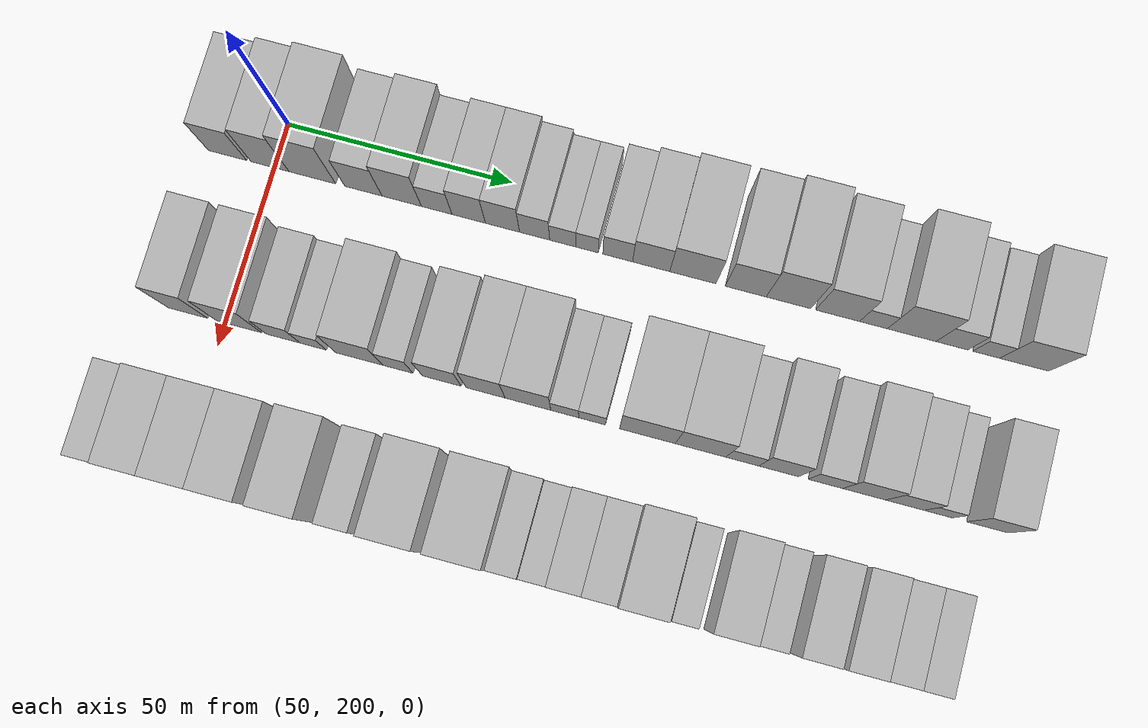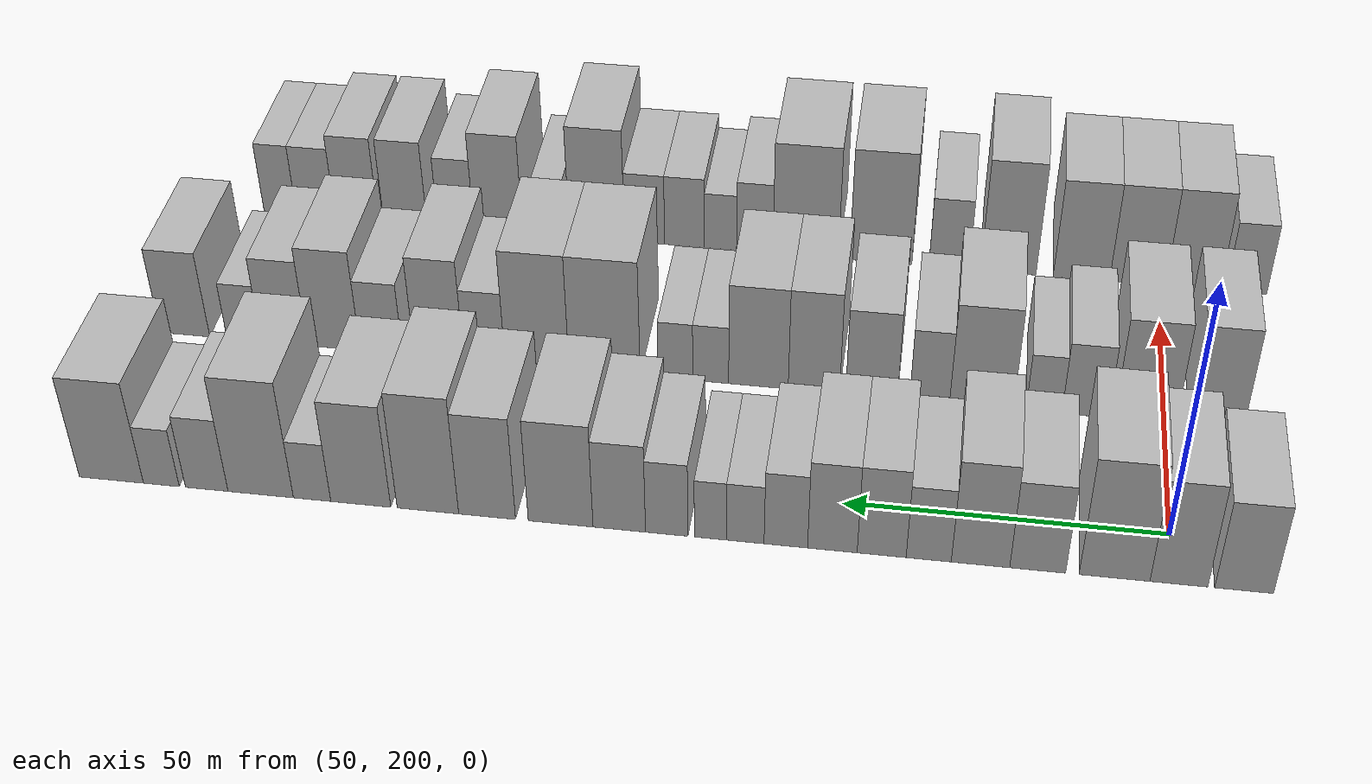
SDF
<sdf version="1.6">
 <world name="default">
  <model name="building_61">
   <static>1</static>
   <pose>50.0000 189.5062 0 0.000000 0.000000 0.000000</pose>
   <link name="link">
    <pose>0 0 9.00 0 0 0</pose>
    <collision name="collision"><geometry><box><size>20.0000 8.5826 18.0000</size></box></geometry></collision>
    <visual name="visual">
     <cast_shadows>0</cast_shadows>
     <geometry><box><size>20.0000 8.5826 18.0000</size></box></geometry>
     <material>
      <script>
       <uri>model://HANNAS_wall/materials/scripts</uri>
       <uri>model://HANNAS_wall/materials/textures</uri>
       <name>vrc/HANNAS_wall</name>
      </script>
     </material>
    </visual>
   </link>
  </model>
  <model name="building_62">
   <static>1</static>
   <pose>50.0000 199.0458 0 0.000000 0.000000 0.000000</pose>
   <link name="link">
    <pose>0 0 10.50 0 0 0</pose>
    <collision name="collision"><geometry><box><size>20.0000 8.4966 21.0000</size></box></geometry></collision>
    <visual name="visual">
     <cast_shadows>0</cast_shadows>
     <geometry><box><size>20.0000 8.4966 21.0000</size></box></geometry>
     <material>
      <script>
       <uri>model://HANNAS_wall/materials/scripts</uri>
       <uri>model://HANNAS_wall/materials/textures</uri>
       <name>vrc/HANNAS_wall</name>
      </script>
     </material>
    </visual>
   </link>
  </model>
  <model name="building_63">
   <static>1</static>
   <pose>50.0000 208.5185 0 0.000000 0.000000 0.000000</pose>
   <link name="link">
    <pose>0 0 12.00 0 0 0</pose>
    <collision name="collision"><geometry><box><size>20.0000 10.4487 24.0000</size></box></geometry></collision>
    <visual name="visual">
     <cast_shadows>0</cast_shadows>
     <geometry><box><size>20.0000 10.4487 24.0000</size></box></geometry>
     <material>
      <script>
       <uri>model://HANNAS_wall/materials/scripts</uri>
       <uri>model://HANNAS_wall/materials/textures</uri>
       <name>vrc/HANNAS_wall</name>
      </script>
     </material>
    </visual>
   </link>
  </model>
  <model name="building_64">
   <static>1</static>
   <pose>50.0000 219.8990 0 0.000000 0.000000 0.000000</pose>
   <link name="link">
    <pose>0 0 9.00 0 0 0</pose>
    <collision name="collision"><geometry><box><size>20.0000 8.3124 18.0000</size></box></geometry></collision>
    <visual name="visual">
     <cast_shadows>0</cast_shadows>
     <geometry><box><size>20.0000 8.3124 18.0000</size></box></geometry>
     <material>
      <script>
       <uri>model://HANNAS_wall/materials/scripts</uri>
       <uri>model://HANNAS_wall/materials/textures</uri>
       <name>vrc/HANNAS_wall</name>
      </script>
     </material>
    </visual>
   </link>
  </model>
  <model name="building_65">
   <static>1</static>
   <pose>50.0000 228.4237 0 0.000000 0.000000 0.000000</pose>
   <link name="link">
    <pose>0 0 10.50 0 0 0</pose>
    <collision name="collision"><geometry><box><size>20.0000 8.7370 21.0000</size></box></geometry></collision>
    <visual name="visual">
     <cast_shadows>0</cast_shadows>
     <geometry><box><size>20.0000 8.7370 21.0000</size></box></geometry>
     <material>
      <script>
       <uri>model://HANNAS_wall/materials/scripts</uri>
       <uri>model://HANNAS_wall/materials/textures</uri>
       <name>vrc/HANNAS_wall</name>
      </script>
     </material>
    </visual>
   </link>
  </model>
  <model name="building_66">
   <static>1</static>
   <pose>50.0000 236.1806 0 0.000000 0.000000 0.000000</pose>
   <link name="link">
    <pose>0 0 7.50 0 0 0</pose>
    <collision name="collision"><geometry><box><size>20.0000 6.7767 15.0000</size></box></geometry></collision>
    <visual name="visual">
     <cast_shadows>0</cast_shadows>
     <geometry><box><size>20.0000 6.7767 15.0000</size></box></geometry>
     <material>
      <script>
       <uri>model://HANNAS_wall/materials/scripts</uri>
       <uri>model://HANNAS_wall/materials/textures</uri>
       <name>vrc/HANNAS_wall</name>
      </script>
     </material>
    </visual>
   </link>
  </model>
  <model name="building_67">
   <static>1</static>
   <pose>50.0000 243.2660 0 0.000000 0.000000 0.000000</pose>
   <link name="link">
    <pose>0 0 9.00 0 0 0</pose>
    <collision name="collision"><geometry><box><size>20.0000 7.3940 18.0000</size></box></geometry></collision>
    <visual name="visual">
     <cast_shadows>0</cast_shadows>
     <geometry><box><size>20.0000 7.3940 18.0000</size></box></geometry>
     <material>
      <script>
       <uri>model://HANNAS_wall/materials/scripts</uri>
       <uri>model://HANNAS_wall/materials/textures</uri>
       <name>vrc/HANNAS_wall</name>
      </script>
     </material>
    </visual>
   </link>
  </model>
  <model name="building_68">
   <static>1</static>
   <pose>50.0000 250.7237 0 0.000000 0.000000 0.000000</pose>
   <link name="link">
    <pose>0 0 9.00 0 0 0</pose>
    <collision name="collision"><geometry><box><size>20.0000 7.5214 18.0000</size></box></geometry></collision>
    <visual name="visual">
     <cast_shadows>0</cast_shadows>
     <geometry><box><size>20.0000 7.5214 18.0000</size></box></geometry>
     <material>
      <script>
       <uri>model://HANNAS_wall/materials/scripts</uri>
       <uri>model://HANNAS_wall/materials/textures</uri>
       <name>vrc/HANNAS_wall</name>
      </script>
     </material>
    </visual>
   </link>
  </model>
  <model name="building_69">
   <static>1</static>
   <pose>50.0000 257.7982 0 0.000000 0.000000 0.000000</pose>
   <link name="link">
    <pose>0 0 7.50 0 0 0</pose>
    <collision name="collision"><geometry><box><size>20.0000 6.6276 15.0000</size></box></geometry></collision>
    <visual name="visual">
     <cast_shadows>0</cast_shadows>
     <geometry><box><size>20.0000 6.6276 15.0000</size></box></geometry>
     <material>
      <script>
       <uri>model://HANNAS_wall/materials/scripts</uri>
       <uri>model://HANNAS_wall/materials/textures</uri>
       <name>vrc/HANNAS_wall</name>
      </script>
     </material>
    </visual>
   </link>
  </model>
  <model name="building_70">
   <static>1</static>
   <pose>50.0000 263.9944 0 0.000000 0.000000 0.000000</pose>
   <link name="link">
    <pose>0 0 6.00 0 0 0</pose>
    <collision name="collision"><geometry><box><size>20.0000 5.7649 12.0000</size></box></geometry></collision>
    <visual name="visual">
     <cast_shadows>0</cast_shadows>
     <geometry><box><size>20.0000 5.7649 12.0000</size></box></geometry>
     <material>
      <script>
       <uri>model://HANNAS_wall/materials/scripts</uri>
       <uri>model://HANNAS_wall/materials/textures</uri>
       <name>vrc/HANNAS_wall</name>
      </script>
     </material>
    </visual>
   </link>
  </model>
  <model name="building_71">
   <static>1</static>
   <pose>50.0000 269.3222 0 0.000000 0.000000 0.000000</pose>
   <link name="link">
    <pose>0 0 6.00 0 0 0</pose>
    <collision name="collision"><geometry><box><size>20.0000 4.8907 12.0000</size></box></geometry></collision>
    <visual name="visual">
     <cast_shadows>0</cast_shadows>
     <geometry><box><size>20.0000 4.8907 12.0000</size></box></geometry>
     <material>
      <script>
       <uri>model://HANNAS_wall/materials/scripts</uri>
       <uri>model://HANNAS_wall/materials/textures</uri>
       <name>vrc/HANNAS_wall</name>
      </script>
     </material>
    </visual>
   </link>
  </model>
  <model name="building_72">
   <static>1</static>
   <pose>50.0000 276.0290 0 0.000000 0.000000 0.000000</pose>
   <link name="link">
    <pose>0 0 7.50 0 0 0</pose>
    <collision name="collision"><geometry><box><size>20.0000 6.5229 15.0000</size></box></geometry></collision>
    <visual name="visual">
     <cast_shadows>0</cast_shadows>
     <geometry><box><size>20.0000 6.5229 15.0000</size></box></geometry>
     <material>
      <script>
       <uri>model://HANNAS_wall/materials/scripts</uri>
       <uri>model://HANNAS_wall/materials/textures</uri>
       <name>vrc/HANNAS_wall</name>
      </script>
     </material>
    </visual>
   </link>
  </model>
  <model name="building_73">
   <static>1</static>
   <pose>50.0000 283.3544 0 0.000000 0.000000 0.000000</pose>
   <link name="link">
    <pose>0 0 9.00 0 0 0</pose>
    <collision name="collision"><geometry><box><size>20.0000 8.1279 18.0000</size></box></geometry></collision>
    <visual name="visual">
     <cast_shadows>0</cast_shadows>
     <geometry><box><size>20.0000 8.1279 18.0000</size></box></geometry>
     <material>
      <script>
       <uri>model://HANNAS_wall/materials/scripts</uri>
       <uri>model://HANNAS_wall/materials/textures</uri>
       <name>vrc/HANNAS_wall</name>
      </script>
     </material>
    </visual>
   </link>
  </model>
  <model name="building_74">
   <static>1</static>
   <pose>50.0000 292.4575 0 0.000000 0.000000 0.000000</pose>
   <link name="link">
    <pose>0 0 10.50 0 0 0</pose>
    <collision name="collision"><geometry><box><size>20.0000 10.0783 21.0000</size></box></geometry></collision>
    <visual name="visual">
     <cast_shadows>0</cast_shadows>
     <geometry><box><size>20.0000 10.0783 21.0000</size></box></geometry>
     <material>
      <script>
       <uri>model://HANNAS_wall/materials/scripts</uri>
       <uri>model://HANNAS_wall/materials/textures</uri>
       <name>vrc/HANNAS_wall</name>
      </script>
     </material>
    </visual>
   </link>
  </model>
  <model name="building_75">
   <static>1</static>
   <pose>50.0000 303.9528 0 0.000000 0.000000 0.000000</pose>
   <link name="link">
    <pose>0 0 10.50 0 0 0</pose>
    <collision name="collision"><geometry><box><size>20.0000 8.9124 21.0000</size></box></geometry></collision>
    <visual name="visual">
     <cast_shadows>0</cast_shadows>
     <geometry><box><size>20.0000 8.9124 21.0000</size></box></geometry>
     <material>
      <script>
       <uri>model://HANNAS_wall/materials/scripts</uri>
       <uri>model://HANNAS_wall/materials/textures</uri>
       <name>vrc/HANNAS_wall</name>
      </script>
     </material>
    </visual>
   </link>
  </model>
  <model name="building_76">
   <static>1</static>
   <pose>50.0000 313.2614 0 0.000000 0.000000 0.000000</pose>
   <link name="link">
    <pose>0 0 12.00 0 0 0</pose>
    <collision name="collision"><geometry><box><size>20.0000 9.7048 24.0000</size></box></geometry></collision>
    <visual name="visual">
     <cast_shadows>0</cast_shadows>
     <geometry><box><size>20.0000 9.7048 24.0000</size></box></geometry>
     <material>
      <script>
       <uri>model://HANNAS_wall/materials/scripts</uri>
       <uri>model://HANNAS_wall/materials/textures</uri>
       <name>vrc/HANNAS_wall</name>
      </script>
     </material>
    </visual>
   </link>
  </model>
  <model name="building_77">
   <static>1</static>
   <pose>50.0000 323.8792 0 0.000000 0.000000 0.000000</pose>
   <link name="link">
    <pose>0 0 10.50 0 0 0</pose>
    <collision name="collision"><geometry><box><size>20.0000 9.5310 21.0000</size></box></geometry></collision>
    <visual name="visual">
     <cast_shadows>0</cast_shadows>
     <geometry><box><size>20.0000 9.5310 21.0000</size></box></geometry>
     <material>
      <script>
       <uri>model://HANNAS_wall/materials/scripts</uri>
       <uri>model://HANNAS_wall/materials/textures</uri>
       <name>vrc/HANNAS_wall</name>
      </script>
     </material>
    </visual>
   </link>
  </model>
  <model name="building_78">
   <static>1</static>
   <pose>50.0000 331.6305 0 0.000000 0.000000 0.000000</pose>
   <link name="link">
    <pose>0 0 6.00 0 0 0</pose>
    <collision name="collision"><geometry><box><size>20.0000 5.9716 12.0000</size></box></geometry></collision>
    <visual name="visual">
     <cast_shadows>0</cast_shadows>
     <geometry><box><size>20.0000 5.9716 12.0000</size></box></geometry>
     <material>
      <script>
       <uri>model://HANNAS_wall/materials/scripts</uri>
       <uri>model://HANNAS_wall/materials/textures</uri>
       <name>vrc/HANNAS_wall</name>
      </script>
     </material>
    </visual>
   </link>
  </model>
  <model name="building_79">
   <static>1</static>
   <pose>50.0000 339.8569 0 0.000000 0.000000 0.000000</pose>
   <link name="link">
    <pose>0 0 12.00 0 0 0</pose>
    <collision name="collision"><geometry><box><size>20.0000 10.4810 24.0000</size></box></geometry></collision>
    <visual name="visual">
     <cast_shadows>0</cast_shadows>
     <geometry><box><size>20.0000 10.4810 24.0000</size></box></geometry>
     <material>
      <script>
       <uri>model://HANNAS_wall/materials/scripts</uri>
       <uri>model://HANNAS_wall/materials/textures</uri>
       <name>vrc/HANNAS_wall</name>
      </script>
     </material>
    </visual>
   </link>
  </model>
  <model name="building_80">
   <static>1</static>
   <pose>50.0000 348.5293 0 0.000000 0.000000 0.000000</pose>
   <link name="link">
    <pose>0 0 7.50 0 0 0</pose>
    <collision name="collision"><geometry><box><size>20.0000 6.8639 15.0000</size></box></geometry></collision>
    <visual name="visual">
     <cast_shadows>0</cast_shadows>
     <geometry><box><size>20.0000 6.8639 15.0000</size></box></geometry>
     <material>
      <script>
       <uri>model://HANNAS_wall/materials/scripts</uri>
       <uri>model://HANNAS_wall/materials/textures</uri>
       <name>vrc/HANNAS_wall</name>
      </script>
     </material>
    </visual>
   </link>
  </model>
  <model name="building_81">
   <static>1</static>
   <pose>50.0000 355.8564 0 0.000000 0.000000 0.000000</pose>
   <link name="link">
    <pose>0 0 6.00 0 0 0</pose>
    <collision name="collision"><geometry><box><size>20.0000 5.7903 12.0000</size></box></geometry></collision>
    <visual name="visual">
     <cast_shadows>0</cast_shadows>
     <geometry><box><size>20.0000 5.7903 12.0000</size></box></geometry>
     <material>
      <script>
       <uri>model://HANNAS_wall/materials/scripts</uri>
       <uri>model://HANNAS_wall/materials/textures</uri>
       <name>vrc/HANNAS_wall</name>
      </script>
     </material>
    </visual>
   </link>
  </model>
  <model name="building_82">
   <static>1</static>
   <pose>50.0000 363.9693 0 0.000000 0.000000 0.000000</pose>
   <link name="link">
    <pose>0 0 10.50 0 0 0</pose>
    <collision name="collision"><geometry><box><size>20.0000 10.4354 21.0000</size></box></geometry></collision>
    <visual name="visual">
     <cast_shadows>0</cast_shadows>
     <geometry><box><size>20.0000 10.4354 21.0000</size></box></geometry>
     <material>
      <script>
       <uri>model://HANNAS_wall/materials/scripts</uri>
       <uri>model://HANNAS_wall/materials/textures</uri>
       <name>vrc/HANNAS_wall</name>
      </script>
     </material>
    </visual>
   </link>
  </model>
  <model name="building_147">
   <static>1</static>
   <pose>85.0000 191.8316 0 0.000000 0.000000 0.000000</pose>
   <link name="link">
    <pose>0 0 10.50 0 0 0</pose>
    <collision name="collision"><geometry><box><size>20.0000 8.6580 21.0000</size></box></geometry></collision>
    <visual name="visual">
     <cast_shadows>0</cast_shadows>
     <geometry><box><size>20.0000 8.6580 21.0000</size></box></geometry>
     <material>
      <script>
       <uri>model://HANNAS_wall/materials/scripts</uri>
       <uri>model://HANNAS_wall/materials/textures</uri>
       <name>vrc/HANNAS_wall</name>
      </script>
     </material>
    </visual>
   </link>
  </model>
  <model name="building_148">
   <static>1</static>
   <pose>85.0000 203.1161 0 0.000000 0.000000 0.000000</pose>
   <link name="link">
    <pose>0 0 10.50 0 0 0</pose>
    <collision name="collision"><geometry><box><size>20.0000 9.9110 21.0000</size></box></geometry></collision>
    <visual name="visual">
     <cast_shadows>0</cast_shadows>
     <geometry><box><size>20.0000 9.9110 21.0000</size></box></geometry>
     <material>
      <script>
       <uri>model://HANNAS_wall/materials/scripts</uri>
       <uri>model://HANNAS_wall/materials/textures</uri>
       <name>vrc/HANNAS_wall</name>
      </script>
     </material>
    </visual>
   </link>
  </model>
  <model name="building_149">
   <static>1</static>
   <pose>85.0000 212.7818 0 0.000000 0.000000 0.000000</pose>
   <link name="link">
    <pose>0 0 7.50 0 0 0</pose>
    <collision name="collision"><geometry><box><size>20.0000 7.4204 15.0000</size></box></geometry></collision>
    <visual name="visual">
     <cast_shadows>0</cast_shadows>
     <geometry><box><size>20.0000 7.4204 15.0000</size></box></geometry>
     <material>
      <script>
       <uri>model://HANNAS_wall/materials/scripts</uri>
       <uri>model://HANNAS_wall/materials/textures</uri>
       <name>vrc/HANNAS_wall</name>
      </script>
     </material>
    </visual>
   </link>
  </model>
  <model name="building_150">
   <static>1</static>
   <pose>85.0000 219.3795 0 0.000000 0.000000 0.000000</pose>
   <link name="link">
    <pose>0 0 6.00 0 0 0</pose>
    <collision name="collision"><geometry><box><size>20.0000 5.7750 12.0000</size></box></geometry></collision>
    <visual name="visual">
     <cast_shadows>0</cast_shadows>
     <geometry><box><size>20.0000 5.7750 12.0000</size></box></geometry>
     <material>
      <script>
       <uri>model://HANNAS_wall/materials/scripts</uri>
       <uri>model://HANNAS_wall/materials/textures</uri>
       <name>vrc/HANNAS_wall</name>
      </script>
     </material>
    </visual>
   </link>
  </model>
  <model name="building_151">
   <static>1</static>
   <pose>85.0000 229.4558 0 0.000000 0.000000 0.000000</pose>
   <link name="link">
    <pose>0 0 10.50 0 0 0</pose>
    <collision name="collision"><geometry><box><size>20.0000 10.3777 21.0000</size></box></geometry></collision>
    <visual name="visual">
     <cast_shadows>0</cast_shadows>
     <geometry><box><size>20.0000 10.3777 21.0000</size></box></geometry>
     <material>
      <script>
       <uri>model://HANNAS_wall/materials/scripts</uri>
       <uri>model://HANNAS_wall/materials/textures</uri>
       <name>vrc/HANNAS_wall</name>
      </script>
     </material>
    </visual>
   </link>
  </model>
  <model name="building_152">
   <static>1</static>
   <pose>85.0000 237.8941 0 0.000000 0.000000 0.000000</pose>
   <link name="link">
    <pose>0 0 7.50 0 0 0</pose>
    <collision name="collision"><geometry><box><size>20.0000 6.4988 15.0000</size></box></geometry></collision>
    <visual name="visual">
     <cast_shadows>0</cast_shadows>
     <geometry><box><size>20.0000 6.4988 15.0000</size></box></geometry>
     <material>
      <script>
       <uri>model://HANNAS_wall/materials/scripts</uri>
       <uri>model://HANNAS_wall/materials/textures</uri>
       <name>vrc/HANNAS_wall</name>
      </script>
     </material>
    </visual>
   </link>
  </model>
  <model name="building_153">
   <static>1</static>
   <pose>85.0000 247.3839 0 0.000000 0.000000 0.000000</pose>
   <link name="link">
    <pose>0 0 9.00 0 0 0</pose>
    <collision name="collision"><geometry><box><size>20.0000 8.4809 18.0000</size></box></geometry></collision>
    <visual name="visual">
     <cast_shadows>0</cast_shadows>
     <geometry><box><size>20.0000 8.4809 18.0000</size></box></geometry>
     <material>
      <script>
       <uri>model://HANNAS_wall/materials/scripts</uri>
       <uri>model://HANNAS_wall/materials/textures</uri>
       <name>vrc/HANNAS_wall</name>
      </script>
     </material>
    </visual>
   </link>
  </model>
  <model name="building_154">
   <static>1</static>
   <pose>85.0000 256.8601 0 0.000000 0.000000 0.000000</pose>
   <link name="link">
    <pose>0 0 10.50 0 0 0</pose>
    <collision name="collision"><geometry><box><size>20.0000 8.4714 21.0000</size></box></geometry></collision>
    <visual name="visual">
     <cast_shadows>0</cast_shadows>
     <geometry><box><size>20.0000 8.4714 21.0000</size></box></geometry>
     <material>
      <script>
       <uri>model://HANNAS_wall/materials/scripts</uri>
       <uri>model://HANNAS_wall/materials/textures</uri>
       <name>vrc/HANNAS_wall</name>
      </script>
     </material>
    </visual>
   </link>
  </model>
  <model name="building_155">
   <static>1</static>
   <pose>85.0000 266.0263 0 0.000000 0.000000 0.000000</pose>
   <link name="link">
    <pose>0 0 10.50 0 0 0</pose>
    <collision name="collision"><geometry><box><size>20.0000 9.8610 21.0000</size></box></geometry></collision>
    <visual name="visual">
     <cast_shadows>0</cast_shadows>
     <geometry><box><size>20.0000 9.8610 21.0000</size></box></geometry>
     <material>
      <script>
       <uri>model://HANNAS_wall/materials/scripts</uri>
       <uri>model://HANNAS_wall/materials/textures</uri>
       <name>vrc/HANNAS_wall</name>
      </script>
     </material>
    </visual>
   </link>
  </model>
  <model name="building_156">
   <static>1</static>
   <pose>85.0000 273.9375 0 0.000000 0.000000 0.000000</pose>
   <link name="link">
    <pose>0 0 6.00 0 0 0</pose>
    <collision name="collision"><geometry><box><size>20.0000 5.9615 12.0000</size></box></geometry></collision>
    <visual name="visual">
     <cast_shadows>0</cast_shadows>
     <geometry><box><size>20.0000 5.9615 12.0000</size></box></geometry>
     <material>
      <script>
       <uri>model://HANNAS_wall/materials/scripts</uri>
       <uri>model://HANNAS_wall/materials/textures</uri>
       <name>vrc/HANNAS_wall</name>
      </script>
     </material>
    </visual>
   </link>
  </model>
  <model name="building_157">
   <static>1</static>
   <pose>85.0000 279.8059 0 0.000000 0.000000 0.000000</pose>
   <link name="link">
    <pose>0 0 6.00 0 0 0</pose>
    <collision name="collision"><geometry><box><size>20.0000 5.7753 12.0000</size></box></geometry></collision>
    <visual name="visual">
     <cast_shadows>0</cast_shadows>
     <geometry><box><size>20.0000 5.7753 12.0000</size></box></geometry>
     <material>
      <script>
       <uri>model://HANNAS_wall/materials/scripts</uri>
       <uri>model://HANNAS_wall/materials/textures</uri>
       <name>vrc/HANNAS_wall</name>
      </script>
     </material>
    </visual>
   </link>
  </model>
  <model name="building_158">
   <static>1</static>
   <pose>85.0000 291.6742 0 0.000000 0.000000 0.000000</pose>
   <link name="link">
    <pose>0 0 12.00 0 0 0</pose>
    <collision name="collision"><geometry><box><size>20.0000 11.9613 24.0000</size></box></geometry></collision>
    <visual name="visual">
     <cast_shadows>0</cast_shadows>
     <geometry><box><size>20.0000 11.9613 24.0000</size></box></geometry>
     <material>
      <script>
       <uri>model://HANNAS_wall/materials/scripts</uri>
       <uri>model://HANNAS_wall/materials/textures</uri>
       <name>vrc/HANNAS_wall</name>
      </script>
     </material>
    </visual>
   </link>
  </model>
  <model name="building_159">
   <static>1</static>
   <pose>85.0000 303.0565 0 0.000000 0.000000 0.000000</pose>
   <link name="link">
    <pose>0 0 12.00 0 0 0</pose>
    <collision name="collision"><geometry><box><size>20.0000 10.8032 24.0000</size></box></geometry></collision>
    <visual name="visual">
     <cast_shadows>0</cast_shadows>
     <geometry><box><size>20.0000 10.8032 24.0000</size></box></geometry>
     <material>
      <script>
       <uri>model://HANNAS_wall/materials/scripts</uri>
       <uri>model://HANNAS_wall/materials/textures</uri>
       <name>vrc/HANNAS_wall</name>
      </script>
     </material>
    </visual>
   </link>
  </model>
  <model name="building_160">
   <static>1</static>
   <pose>85.0000 311.9696 0 0.000000 0.000000 0.000000</pose>
   <link name="link">
    <pose>0 0 7.50 0 0 0</pose>
    <collision name="collision"><geometry><box><size>20.0000 7.0230 15.0000</size></box></geometry></collision>
    <visual name="visual">
     <cast_shadows>0</cast_shadows>
     <geometry><box><size>20.0000 7.0230 15.0000</size></box></geometry>
     <material>
      <script>
       <uri>model://HANNAS_wall/materials/scripts</uri>
       <uri>model://HANNAS_wall/materials/textures</uri>
       <name>vrc/HANNAS_wall</name>
      </script>
     </material>
    </visual>
   </link>
  </model>
  <model name="building_161">
   <static>1</static>
   <pose>85.0000 319.7075 0 0.000000 0.000000 0.000000</pose>
   <link name="link">
    <pose>0 0 10.50 0 0 0</pose>
    <collision name="collision"><geometry><box><size>20.0000 8.4528 21.0000</size></box></geometry></collision>
    <visual name="visual">
     <cast_shadows>0</cast_shadows>
     <geometry><box><size>20.0000 8.4528 21.0000</size></box></geometry>
     <material>
      <script>
       <uri>model://HANNAS_wall/materials/scripts</uri>
       <uri>model://HANNAS_wall/materials/textures</uri>
       <name>vrc/HANNAS_wall</name>
      </script>
     </material>
    </visual>
   </link>
  </model>
  <model name="building_162">
   <static>1</static>
   <pose>85.0000 329.5871 0 0.000000 0.000000 0.000000</pose>
   <link name="link">
    <pose>0 0 7.50 0 0 0</pose>
    <collision name="collision"><geometry><box><size>20.0000 7.3066 15.0000</size></box></geometry></collision>
    <visual name="visual">
     <cast_shadows>0</cast_shadows>
     <geometry><box><size>20.0000 7.3066 15.0000</size></box></geometry>
     <material>
      <script>
       <uri>model://HANNAS_wall/materials/scripts</uri>
       <uri>model://HANNAS_wall/materials/textures</uri>
       <name>vrc/HANNAS_wall</name>
      </script>
     </material>
    </visual>
   </link>
  </model>
  <model name="building_163">
   <static>1</static>
   <pose>85.0000 337.7829 0 0.000000 0.000000 0.000000</pose>
   <link name="link">
    <pose>0 0 10.50 0 0 0</pose>
    <collision name="collision"><geometry><box><size>20.0000 9.0849 21.0000</size></box></geometry></collision>
    <visual name="visual">
     <cast_shadows>0</cast_shadows>
     <geometry><box><size>20.0000 9.0849 21.0000</size></box></geometry>
     <material>
      <script>
       <uri>model://HANNAS_wall/materials/scripts</uri>
       <uri>model://HANNAS_wall/materials/textures</uri>
       <name>vrc/HANNAS_wall</name>
      </script>
     </material>
    </visual>
   </link>
  </model>
  <model name="building_164">
   <static>1</static>
   <pose>85.0000 346.3724 0 0.000000 0.000000 0.000000</pose>
   <link name="link">
    <pose>0 0 9.00 0 0 0</pose>
    <collision name="collision"><geometry><box><size>20.0000 8.0942 18.0000</size></box></geometry></collision>
    <visual name="visual">
     <cast_shadows>0</cast_shadows>
     <geometry><box><size>20.0000 8.0942 18.0000</size></box></geometry>
     <material>
      <script>
       <uri>model://HANNAS_wall/materials/scripts</uri>
       <uri>model://HANNAS_wall/materials/textures</uri>
       <name>vrc/HANNAS_wall</name>
      </script>
     </material>
    </visual>
   </link>
  </model>
  <model name="building_165">
   <static>1</static>
   <pose>85.0000 353.4026 0 0.000000 0.000000 0.000000</pose>
   <link name="link">
    <pose>0 0 6.00 0 0 0</pose>
    <collision name="collision"><geometry><box><size>20.0000 5.9663 12.0000</size></box></geometry></collision>
    <visual name="visual">
     <cast_shadows>0</cast_shadows>
     <geometry><box><size>20.0000 5.9663 12.0000</size></box></geometry>
     <material>
      <script>
       <uri>model://HANNAS_wall/materials/scripts</uri>
       <uri>model://HANNAS_wall/materials/textures</uri>
       <name>vrc/HANNAS_wall</name>
      </script>
     </material>
    </visual>
   </link>
  </model>
  <model name="building_166">
   <static>1</static>
   <pose>85.0000 363.7297 0 0.000000 0.000000 0.000000</pose>
   <link name="link">
    <pose>0 0 9.00 0 0 0</pose>
    <collision name="collision"><geometry><box><size>20.0000 8.6880 18.0000</size></box></geometry></collision>
    <visual name="visual">
     <cast_shadows>0</cast_shadows>
     <geometry><box><size>20.0000 8.6880 18.0000</size></box></geometry>
     <material>
      <script>
       <uri>model://HANNAS_wall/materials/scripts</uri>
       <uri>model://HANNAS_wall/materials/textures</uri>
       <name>vrc/HANNAS_wall</name>
      </script>
     </material>
    </visual>
   </link>
  </model>
  <model name="building_228">
   <static>1</static>
   <pose>120.0000 184.9262 0 0.000000 0.000000 0.000000</pose>
   <link name="link">
    <pose>0 0 7.50 0 0 0</pose>
    <collision name="collision"><geometry><box><size>20.0000 6.9395 15.0000</size></box></geometry></collision>
    <visual name="visual">
     <cast_shadows>0</cast_shadows>
     <geometry><box><size>20.0000 6.9395 15.0000</size></box></geometry>
     <material>
      <script>
       <uri>model://HANNAS_wall/materials/scripts</uri>
       <uri>model://HANNAS_wall/materials/textures</uri>
       <name>vrc/HANNAS_wall</name>
      </script>
     </material>
    </visual>
   </link>
  </model>
  <model name="building_229">
   <static>1</static>
   <pose>120.0000 194.0874 0 0.000000 0.000000 0.000000</pose>
   <link name="link">
    <pose>0 0 10.50 0 0 0</pose>
    <collision name="collision"><geometry><box><size>20.0000 9.3828 21.0000</size></box></geometry></collision>
    <visual name="visual">
     <cast_shadows>0</cast_shadows>
     <geometry><box><size>20.0000 9.3828 21.0000</size></box></geometry>
     <material>
      <script>
       <uri>model://HANNAS_wall/materials/scripts</uri>
       <uri>model://HANNAS_wall/materials/textures</uri>
       <name>vrc/HANNAS_wall</name>
      </script>
     </material>
    </visual>
   </link>
  </model>
  <model name="building_230">
   <static>1</static>
   <pose>120.0000 203.5924 0 0.000000 0.000000 0.000000</pose>
   <link name="link">
    <pose>0 0 10.50 0 0 0</pose>
    <collision name="collision"><geometry><box><size>20.0000 9.6273 21.0000</size></box></geometry></collision>
    <visual name="visual">
     <cast_shadows>0</cast_shadows>
     <geometry><box><size>20.0000 9.6273 21.0000</size></box></geometry>
     <material>
      <script>
       <uri>model://HANNAS_wall/materials/scripts</uri>
       <uri>model://HANNAS_wall/materials/textures</uri>
       <name>vrc/HANNAS_wall</name>
      </script>
     </material>
    </visual>
   </link>
  </model>
  <model name="building_231">
   <static>1</static>
   <pose>120.0000 213.2778 0 0.000000 0.000000 0.000000</pose>
   <link name="link">
    <pose>0 0 10.50 0 0 0</pose>
    <collision name="collision"><geometry><box><size>20.0000 9.7434 21.0000</size></box></geometry></collision>
    <visual name="visual">
     <cast_shadows>0</cast_shadows>
     <geometry><box><size>20.0000 9.7434 21.0000</size></box></geometry>
     <material>
      <script>
       <uri>model://HANNAS_wall/materials/scripts</uri>
       <uri>model://HANNAS_wall/materials/textures</uri>
       <name>vrc/HANNAS_wall</name>
      </script>
     </material>
    </visual>
   </link>
  </model>
  <model name="building_232">
   <static>1</static>
   <pose>120.0000 225.9898 0 0.000000 0.000000 0.000000</pose>
   <link name="link">
    <pose>0 0 12.00 0 0 0</pose>
    <collision name="collision"><geometry><box><size>20.0000 9.6807 24.0000</size></box></geometry></collision>
    <visual name="visual">
     <cast_shadows>0</cast_shadows>
     <geometry><box><size>20.0000 9.6807 24.0000</size></box></geometry>
     <material>
      <script>
       <uri>model://HANNAS_wall/materials/scripts</uri>
       <uri>model://HANNAS_wall/materials/textures</uri>
       <name>vrc/HANNAS_wall</name>
      </script>
     </material>
    </visual>
   </link>
  </model>
  <model name="building_233">
   <static>1</static>
   <pose>120.0000 236.3461 0 0.000000 0.000000 0.000000</pose>
   <link name="link">
    <pose>0 0 7.50 0 0 0</pose>
    <collision name="collision"><geometry><box><size>20.0000 7.0319 15.0000</size></box></geometry></collision>
    <visual name="visual">
     <cast_shadows>0</cast_shadows>
     <geometry><box><size>20.0000 7.0319 15.0000</size></box></geometry>
     <material>
      <script>
       <uri>model://HANNAS_wall/materials/scripts</uri>
       <uri>model://HANNAS_wall/materials/textures</uri>
       <name>vrc/HANNAS_wall</name>
      </script>
     </material>
    </visual>
   </link>
  </model>
  <model name="building_234">
   <static>1</static>
   <pose>120.0000 248.3535 0 0.000000 0.000000 0.000000</pose>
   <link name="link">
    <pose>0 0 12.00 0 0 0</pose>
    <collision name="collision"><geometry><box><size>20.0000 10.9828 24.0000</size></box></geometry></collision>
    <visual name="visual">
     <cast_shadows>0</cast_shadows>
     <geometry><box><size>20.0000 10.9828 24.0000</size></box></geometry>
     <material>
      <script>
       <uri>model://HANNAS_wall/materials/scripts</uri>
       <uri>model://HANNAS_wall/materials/textures</uri>
       <name>vrc/HANNAS_wall</name>
      </script>
     </material>
    </visual>
   </link>
  </model>
  <model name="building_235">
   <static>1</static>
   <pose>120.0000 261.6693 0 0.000000 0.000000 0.000000</pose>
   <link name="link">
    <pose>0 0 12.00 0 0 0</pose>
    <collision name="collision"><geometry><box><size>20.0000 11.6489 24.0000</size></box></geometry></collision>
    <visual name="visual">
     <cast_shadows>0</cast_shadows>
     <geometry><box><size>20.0000 11.6489 24.0000</size></box></geometry>
     <material>
      <script>
       <uri>model://HANNAS_wall/materials/scripts</uri>
       <uri>model://HANNAS_wall/materials/textures</uri>
       <name>vrc/HANNAS_wall</name>
      </script>
     </material>
    </visual>
   </link>
  </model>
  <model name="building_236">
   <static>1</static>
   <pose>120.0000 270.7319 0 0.000000 0.000000 0.000000</pose>
   <link name="link">
    <pose>0 0 7.50 0 0 0</pose>
    <collision name="collision"><geometry><box><size>20.0000 6.4762 15.0000</size></box></geometry></collision>
    <visual name="visual">
     <cast_shadows>0</cast_shadows>
     <geometry><box><size>20.0000 6.4762 15.0000</size></box></geometry>
     <material>
      <script>
       <uri>model://HANNAS_wall/materials/scripts</uri>
       <uri>model://HANNAS_wall/materials/textures</uri>
       <name>vrc/HANNAS_wall</name>
      </script>
     </material>
    </visual>
   </link>
  </model>
  <model name="building_237">
   <static>1</static>
   <pose>120.0000 276.8444 0 0.000000 0.000000 0.000000</pose>
   <link name="link">
    <pose>0 0 6.00 0 0 0</pose>
    <collision name="collision"><geometry><box><size>20.0000 5.7488 12.0000</size></box></geometry></collision>
    <visual name="visual">
     <cast_shadows>0</cast_shadows>
     <geometry><box><size>20.0000 5.7488 12.0000</size></box></geometry>
     <material>
      <script>
       <uri>model://HANNAS_wall/materials/scripts</uri>
       <uri>model://HANNAS_wall/materials/textures</uri>
       <name>vrc/HANNAS_wall</name>
      </script>
     </material>
    </visual>
   </link>
  </model>
  <model name="building_238">
   <static>1</static>
   <pose>120.0000 283.2924 0 0.000000 0.000000 0.000000</pose>
   <link name="link">
    <pose>0 0 7.50 0 0 0</pose>
    <collision name="collision"><geometry><box><size>20.0000 7.1472 15.0000</size></box></geometry></collision>
    <visual name="visual">
     <cast_shadows>0</cast_shadows>
     <geometry><box><size>20.0000 7.1472 15.0000</size></box></geometry>
     <material>
      <script>
       <uri>model://HANNAS_wall/materials/scripts</uri>
       <uri>model://HANNAS_wall/materials/textures</uri>
       <name>vrc/HANNAS_wall</name>
      </script>
     </material>
    </visual>
   </link>
  </model>
  <model name="building_239">
   <static>1</static>
   <pose>120.0000 290.4826 0 0.000000 0.000000 0.000000</pose>
   <link name="link">
    <pose>0 0 7.50 0 0 0</pose>
    <collision name="collision"><geometry><box><size>20.0000 7.2331 15.0000</size></box></geometry></collision>
    <visual name="visual">
     <cast_shadows>0</cast_shadows>
     <geometry><box><size>20.0000 7.2331 15.0000</size></box></geometry>
     <material>
      <script>
       <uri>model://HANNAS_wall/materials/scripts</uri>
       <uri>model://HANNAS_wall/materials/textures</uri>
       <name>vrc/HANNAS_wall</name>
      </script>
     </material>
    </visual>
   </link>
  </model>
  <model name="building_240">
   <static>1</static>
   <pose>120.0000 299.1024 0 0.000000 0.000000 0.000000</pose>
   <link name="link">
    <pose>0 0 12.00 0 0 0</pose>
    <collision name="collision"><geometry><box><size>20.0000 10.0066 24.0000</size></box></geometry></collision>
    <visual name="visual">
     <cast_shadows>0</cast_shadows>
     <geometry><box><size>20.0000 10.0066 24.0000</size></box></geometry>
     <material>
      <script>
       <uri>model://HANNAS_wall/materials/scripts</uri>
       <uri>model://HANNAS_wall/materials/textures</uri>
       <name>vrc/HANNAS_wall</name>
      </script>
     </material>
    </visual>
   </link>
  </model>
  <model name="building_241">
   <static>1</static>
   <pose>120.0000 307.8752 0 0.000000 0.000000 0.000000</pose>
   <link name="link">
    <pose>0 0 6.00 0 0 0</pose>
    <collision name="collision"><geometry><box><size>20.0000 5.5390 12.0000</size></box></geometry></collision>
    <visual name="visual">
     <cast_shadows>0</cast_shadows>
     <geometry><box><size>20.0000 5.5390 12.0000</size></box></geometry>
     <material>
      <script>
       <uri>model://HANNAS_wall/materials/scripts</uri>
       <uri>model://HANNAS_wall/materials/textures</uri>
       <name>vrc/HANNAS_wall</name>
      </script>
     </material>
    </visual>
   </link>
  </model>
  <model name="building_242">
   <static>1</static>
   <pose>120.0000 317.1034 0 0.000000 0.000000 0.000000</pose>
   <link name="link">
    <pose>0 0 10.50 0 0 0</pose>
    <collision name="collision"><geometry><box><size>20.0000 8.9175 21.0000</size></box></geometry></collision>
    <visual name="visual">
     <cast_shadows>0</cast_shadows>
     <geometry><box><size>20.0000 8.9175 21.0000</size></box></geometry>
     <material>
      <script>
       <uri>model://HANNAS_wall/materials/scripts</uri>
       <uri>model://HANNAS_wall/materials/textures</uri>
       <name>vrc/HANNAS_wall</name>
      </script>
     </material>
    </visual>
   </link>
  </model>
  <model name="building_243">
   <static>1</static>
   <pose>120.0000 324.8792 0 0.000000 0.000000 0.000000</pose>
   <link name="link">
    <pose>0 0 7.50 0 0 0</pose>
    <collision name="collision"><geometry><box><size>20.0000 6.6342 15.0000</size></box></geometry></collision>
    <visual name="visual">
     <cast_shadows>0</cast_shadows>
     <geometry><box><size>20.0000 6.6342 15.0000</size></box></geometry>
     <material>
      <script>
       <uri>model://HANNAS_wall/materials/scripts</uri>
       <uri>model://HANNAS_wall/materials/textures</uri>
       <name>vrc/HANNAS_wall</name>
      </script>
     </material>
    </visual>
   </link>
  </model>
  <model name="building_244">
   <static>1</static>
   <pose>120.0000 334.2100 0 0.000000 0.000000 0.000000</pose>
   <link name="link">
    <pose>0 0 9.00 0 0 0</pose>
    <collision name="collision"><geometry><box><size>20.0000 8.0273 18.0000</size></box></geometry></collision>
    <visual name="visual">
     <cast_shadows>0</cast_shadows>
     <geometry><box><size>20.0000 8.0273 18.0000</size></box></geometry>
     <material>
      <script>
       <uri>model://HANNAS_wall/materials/scripts</uri>
       <uri>model://HANNAS_wall/materials/textures</uri>
       <name>vrc/HANNAS_wall</name>
      </script>
     </material>
    </visual>
   </link>
  </model>
  <model name="building_245">
   <static>1</static>
   <pose>120.0000 343.2223 0 0.000000 0.000000 0.000000</pose>
   <link name="link">
    <pose>0 0 9.00 0 0 0</pose>
    <collision name="collision"><geometry><box><size>20.0000 7.9974 18.0000</size></box></geometry></collision>
    <visual name="visual">
     <cast_shadows>0</cast_shadows>
     <geometry><box><size>20.0000 7.9974 18.0000</size></box></geometry>
     <material>
      <script>
       <uri>model://HANNAS_wall/materials/scripts</uri>
       <uri>model://HANNAS_wall/materials/textures</uri>
       <name>vrc/HANNAS_wall</name>
      </script>
     </material>
    </visual>
   </link>
  </model>
  <model name="building_246">
   <static>1</static>
   <pose>120.0000 350.8408 0 0.000000 0.000000 0.000000</pose>
   <link name="link">
    <pose>0 0 7.50 0 0 0</pose>
    <collision name="collision"><geometry><box><size>20.0000 7.2397 15.0000</size></box></geometry></collision>
    <visual name="visual">
     <cast_shadows>0</cast_shadows>
     <geometry><box><size>20.0000 7.2397 15.0000</size></box></geometry>
     <material>
      <script>
       <uri>model://HANNAS_wall/materials/scripts</uri>
       <uri>model://HANNAS_wall/materials/textures</uri>
       <name>vrc/HANNAS_wall</name>
      </script>
     </material>
    </visual>
   </link>
  </model>
  <model name="building_247">
   <static>1</static>
   <pose>120.0000 357.4950 0 0.000000 0.000000 0.000000</pose>
   <link name="link">
    <pose>0 0 7.50 0 0 0</pose>
    <collision name="collision"><geometry><box><size>20.0000 6.0688 15.0000</size></box></geometry></collision>
    <visual name="visual">
     <cast_shadows>0</cast_shadows>
     <geometry><box><size>20.0000 6.0688 15.0000</size></box></geometry>
     <material>
      <script>
       <uri>model://HANNAS_wall/materials/scripts</uri>
       <uri>model://HANNAS_wall/materials/textures</uri>
       <name>vrc/HANNAS_wall</name>
      </script>
     </material>
    </visual>
   </link>
  </model>
 </world>
</sdf>
